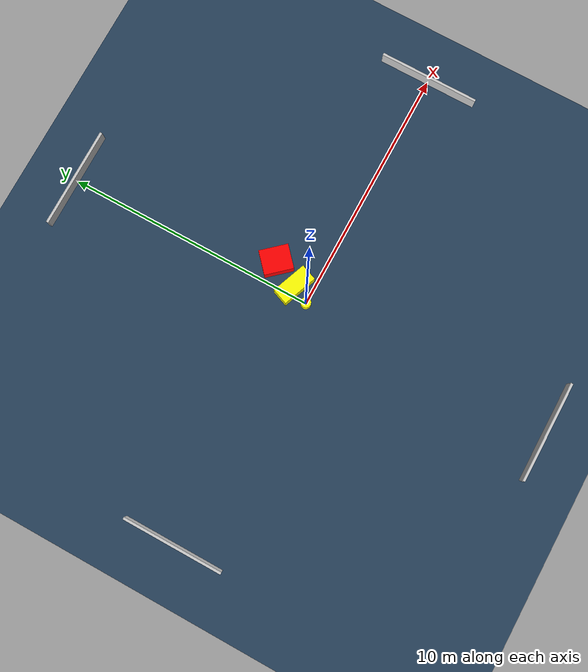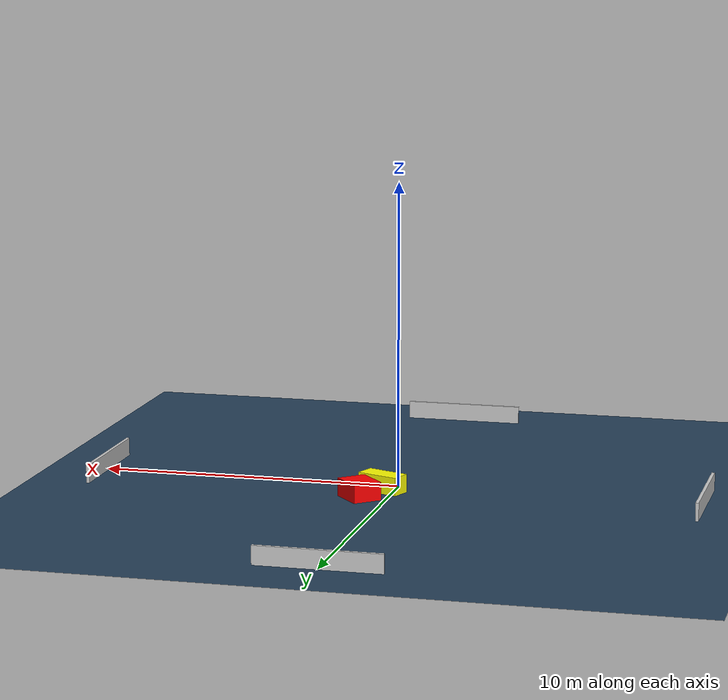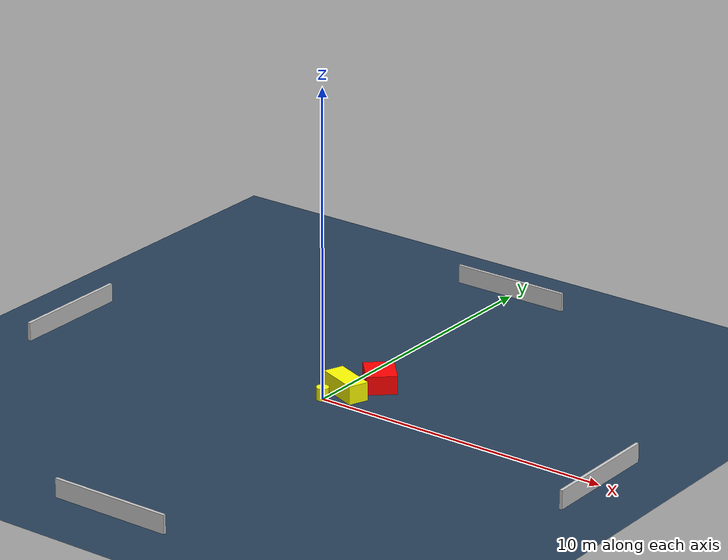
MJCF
<?xml version="1.0" ?>
<mujoco model="generated_environment">
  <option timestep="0.01" integrator="RK4" cone="elliptic"/>
  <default>
    <geom density="1"/>
  </default>
  <asset>
    <texture builtin="gradient" height="3072" name="skybox" rgb1="0.3 0.5 0.7" rgb2="0 0 0" type="skybox" width="512"/>
    <texture builtin="checker" height="300" name="groundplane" rgb1="0.2 0.3 0.4" rgb2="0.1 0.2 0.3" type="2d" width="300"/>
    <material name="groundplane" reflectance="0.2" texrepeat="5 5" texture="groundplane"/>
  </asset>
  <worldbody>
    <light dir="0 0 -1" directional="true" pos="0 0 1.5"/>
    <geom condim="3" friction="0.5 0.005 0.001" material="groundplane" name="floor" pos="0 0 0" size="0 0 0.05" type="plane"/>
    <body name="walls">
      <geom name="wall_1" condim="4" pos="-10.0 0.0 0.3" rgba="0.800000011920929 0.800000011920929 0.800000011920929 1.0" size="0.05 2.0 0.3" type="box"/>
      <geom name="wall_2" condim="4" pos="10.0 0.0 0.3" rgba="0.800000011920929 0.800000011920929 0.800000011920929 1.0" size="0.05 2.0 0.3" type="box"/>
      <geom name="wall_3" condim="4" pos="0.0 -10.0 0.3" rgba="0.800000011920929 0.800000011920929 0.800000011920929 1.0" size="2.0 0.05 0.3" type="box"/>
      <geom name="wall_4" condim="4" pos="0.0 10.0 0.3" rgba="0.800000011920929 0.800000011920929 0.800000011920929 1.0" size="2.0 0.05 0.3" type="box"/>
    </body>
    <body name="robot">
      <joint name="joint_x" type="slide" pos="0 0 0" axis="1 0 0"/>
      <joint name="joint_y" type="slide" pos="0 0 0" axis="0 1 0"/>
      <geom name="robot" type="cylinder" pos="0.0 0.0 0.2" size="0.2 0.2 0.0" mass="5.0" friction="1.0 0.005 0.0001" condim="4" rgba="1.0 1.0 0.0 1.0"/>
    </body>
    <body name="obstacle_1_movable">
      <geom name="obstacle_1_movable" condim="4" pos="0.3668151879181173 0.691168343577748 0.3" euler="0 0 68.976483390876" friction="0.0 0.005 0.001" rgba="1.0 1.0 0.0 1.0" size="0.3325833688951899 0.7179299306870792 0.3" type="box" mass="0.1"/>
      <joint type="free"/>
    </body>
    <body name="obstacle_2_static">
      <geom name="obstacle_2_static" condim="4" pos="0.8777148278288487 1.7407318891541992 0.3" euler="0 0 131.88797145727804" friction="0.0 0.005 0.001" rgba="1.0 0.0 0.0 1.0" size="0.5723872722080221 0.48238166535012306 0.3" type="box"/>
    </body>
  </worldbody>
  <actuator>
    <motor name="actuator_x" joint="joint_x" gear="1" ctrlrange="-1 1"/>
    <motor name="actuator_y" joint="joint_y" gear="1" ctrlrange="-1 1"/>
  </actuator>
</mujoco>
